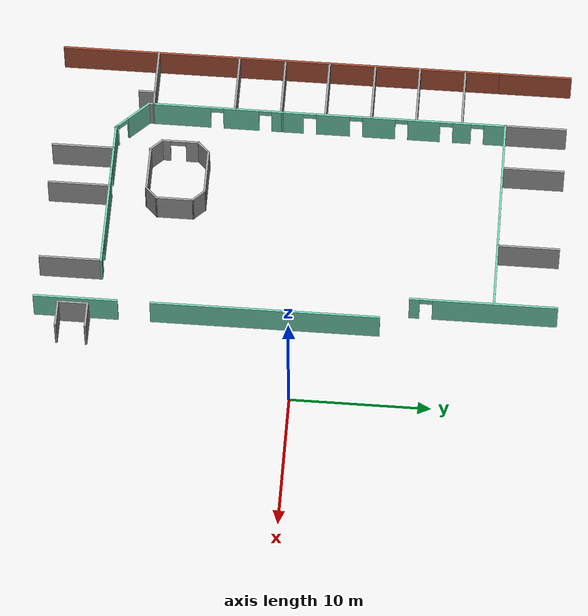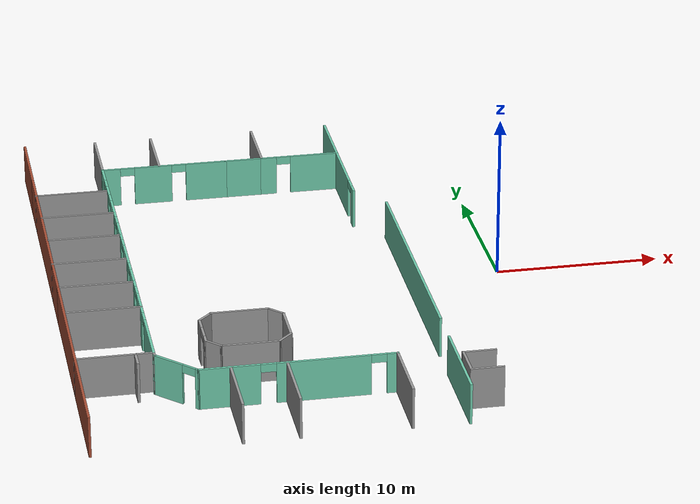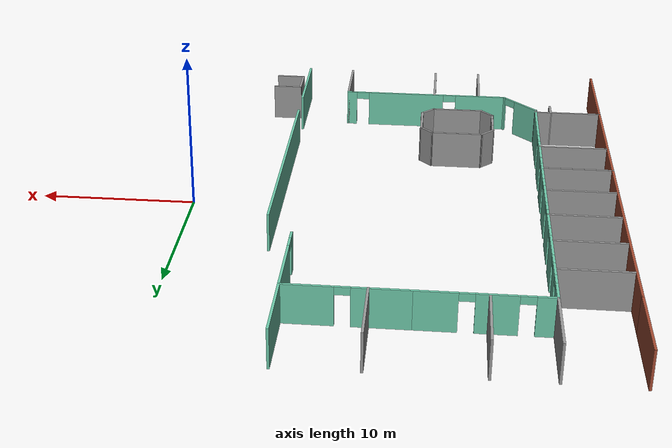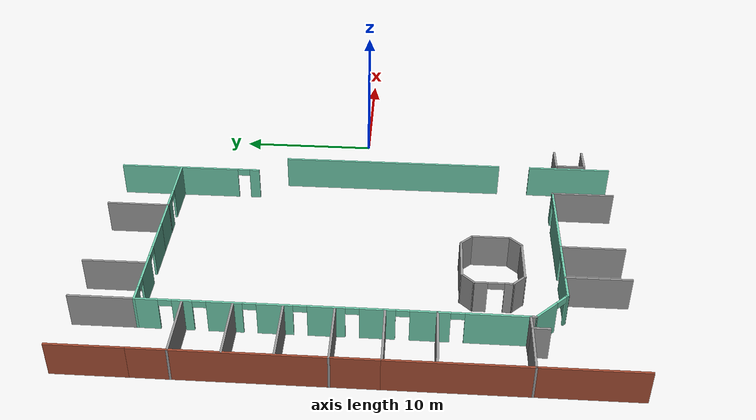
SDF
<sdf version="1.7">
 <model name="circuit_launch">
  <pose>0.02205 -0.005269 0 0 -0 0</pose>
  <link name="Wall_107">
   <pose>-18.6032 13.9124 0 0 -0 3.14159</pose>
   <visual name="Wall_107_Visual_0">
    <pose>-2.69056 0 1.25 0 -0 0</pose>
    <geometry><box><size>2.61888 0.15 2.5</size></box></geometry>
    <material>
     <script><uri>file://media/materials/scripts/gazebo.material</uri><name>Gazebo/Grey</name></script>
     <ambient>0.435294 0.796078 0.67451 1</ambient>
    </material>
    <meta><layer>0</layer></meta>
   </visual>
   <collision name="Wall_107_Collision_0">
    <geometry><box><size>2.61888 0.15 2.5</size></box></geometry>
    <pose>-2.69056 0 1.25 0 -0 0</pose>
   </collision>
   <visual name="Wall_107_Visual_1">
    <pose>0.710992 0 1.25 0 -0 0</pose>
    <geometry><box><size>2.38423 0.15 2.5</size></box></geometry>
    <material>
     <script><uri>file://media/materials/scripts/gazebo.material</uri><name>Gazebo/Grey</name></script>
     <ambient>0.435294 0.796078 0.67451 1</ambient>
    </material>
    <meta><layer>0</layer></meta>
   </visual>
   <collision name="Wall_107_Collision_1">
    <geometry><box><size>2.38423 0.15 2.5</size></box></geometry>
    <pose>0.710992 0 1.25 0 -0 0</pose>
   </collision>
   <visual name="Wall_107_Visual_2">
    <pose>3.40155 0 1.25 0 -0 0</pose>
    <geometry><box><size>1.19689 0.15 2.5</size></box></geometry>
    <material>
     <script><uri>file://media/materials/scripts/gazebo.material</uri><name>Gazebo/Grey</name></script>
     <ambient>0.435294 0.796078 0.67451 1</ambient>
    </material>
    <meta><layer>0</layer></meta>
   </visual>
   <collision name="Wall_107_Collision_2">
    <geometry><box><size>1.19689 0.15 2.5</size></box></geometry>
    <pose>3.40155 0 1.25 0 -0 0</pose>
   </collision>
   <visual name="Wall_107_Visual_3">
    <pose>-0.931122 0 2.25 0 -0 0</pose>
    <geometry><box><size>0.9 0.15 0.5</size></box></geometry>
    <material>
     <script><uri>file://media/materials/scripts/gazebo.material</uri><name>Gazebo/Grey</name></script>
     <ambient>0.435294 0.796078 0.67451 1</ambient>
    </material>
    <meta><layer>0</layer></meta>
   </visual>
   <collision name="Wall_107_Collision_3">
    <geometry><box><size>0.9 0.15 0.5</size></box></geometry>
    <pose>-0.931122 0 2.25 0 -0 0</pose>
   </collision>
   <visual name="Wall_107_Visual_4">
    <pose>2.35311 0 2.25 0 -0 0</pose>
    <geometry><box><size>0.9 0.15 0.5</size></box></geometry>
    <material>
     <script><uri>file://media/materials/scripts/gazebo.material</uri><name>Gazebo/Grey</name></script>
     <ambient>0.435294 0.796078 0.67451 1</ambient>
    </material>
    <meta><layer>0</layer></meta>
   </visual>
   <collision name="Wall_107_Collision_4">
    <geometry><box><size>0.9 0.15 0.5</size></box></geometry>
    <pose>2.35311 0 2.25 0 -0 0</pose>
   </collision>
  </link>
  <link name="Wall_111">
   <pose>-22.5282 5.86241 0 0 -0 -1.5708</pose>
   <visual name="Wall_111_Visual_0">
    <pose>-7.31172 0 1.25 0 -0 0</pose>
    <geometry><box><size>1.62655 0.15 2.5</size></box></geometry>
    <material>
     <script><uri>file://media/materials/scripts/gazebo.material</uri><name>Gazebo/Grey</name></script>
     <ambient>0.435294 0.796078 0.67451 1</ambient>
    </material>
    <meta><layer>0</layer></meta>
   </visual>
   <collision name="Wall_111_Collision_0">
    <geometry><box><size>1.62655 0.15 2.5</size></box></geometry>
    <pose>-7.31172 0 1.25 0 -0 0</pose>
   </collision>
   <visual name="Wall_111_Visual_1">
    <pose>-4.93124 0 1.25 0 -0 0</pose>
    <geometry><box><size>1.33442 0.15 2.5</size></box></geometry>
    <material>
     <script><uri>file://media/materials/scripts/gazebo.material</uri><name>Gazebo/Grey</name></script>
     <ambient>0.435294 0.796078 0.67451 1</ambient>
    </material>
    <meta><layer>0</layer></meta>
   </visual>
   <collision name="Wall_111_Collision_1">
    <geometry><box><size>1.33442 0.15 2.5</size></box></geometry>
    <pose>-4.93124 0 1.25 0 -0 0</pose>
   </collision>
   <visual name="Wall_111_Visual_2">
    <pose>-2.19142 0 1.25 0 -0 0</pose>
    <geometry><box><size>2.34522 0.15 2.5</size></box></geometry>
    <material>
     <script><uri>file://media/materials/scripts/gazebo.material</uri><name>Gazebo/Grey</name></script>
     <ambient>0.435294 0.796078 0.67451 1</ambient>
    </material>
    <meta><layer>0</layer></meta>
   </visual>
   <collision name="Wall_111_Collision_2">
    <geometry><box><size>2.34522 0.15 2.5</size></box></geometry>
    <pose>-2.19142 0 1.25 0 -0 0</pose>
   </collision>
   <visual name="Wall_111_Visual_3">
    <pose>1.0671 0 1.25 0 -0 0</pose>
    <geometry><box><size>2.37182 0.15 2.5</size></box></geometry>
    <material>
     <script><uri>file://media/materials/scripts/gazebo.material</uri><name>Gazebo/Grey</name></script>
     <ambient>0.435294 0.796078 0.67451 1</ambient>
    </material>
    <meta><layer>0</layer></meta>
   </visual>
   <collision name="Wall_111_Collision_3">
    <geometry><box><size>2.37182 0.15 2.5</size></box></geometry>
    <pose>1.0671 0 1.25 0 -0 0</pose>
   </collision>
   <visual name="Wall_111_Visual_4">
    <pose>4.37883 0 1.25 0 -0 0</pose>
    <geometry><box><size>2.45162 0.15 2.5</size></box></geometry>
    <material>
     <script><uri>file://media/materials/scripts/gazebo.material</uri><name>Gazebo/Grey</name></script>
     <ambient>0.435294 0.796078 0.67451 1</ambient>
    </material>
    <meta><layer>0</layer></meta>
   </visual>
   <collision name="Wall_111_Collision_4">
    <geometry><box><size>2.45162 0.15 2.5</size></box></geometry>
    <pose>4.37883 0 1.25 0 -0 0</pose>
   </collision>
   <visual name="Wall_111_Visual_5">
    <pose>7.31482 0 1.25 0 -0 0</pose>
    <geometry><box><size>1.62036 0.15 2.5</size></box></geometry>
    <material>
     <script><uri>file://media/materials/scripts/gazebo.material</uri><name>Gazebo/Grey</name></script>
     <ambient>0.435294 0.796078 0.67451 1</ambient>
    </material>
    <meta><layer>0</layer></meta>
   </visual>
   <collision name="Wall_111_Collision_5">
    <geometry><box><size>1.62036 0.15 2.5</size></box></geometry>
    <pose>7.31482 0 1.25 0 -0 0</pose>
   </collision>
   <visual name="Wall_111_Visual_6">
    <pose>-6.04845 0 2.25 0 -0 0</pose>
    <geometry><box><size>0.9 0.15 0.5</size></box></geometry>
    <material>
     <script><uri>file://media/materials/scripts/gazebo.material</uri><name>Gazebo/Grey</name></script>
     <ambient>0.435294 0.796078 0.67451 1</ambient>
    </material>
    <meta><layer>0</layer></meta>
   </visual>
   <collision name="Wall_111_Collision_6">
    <geometry><box><size>0.9 0.15 0.5</size></box></geometry>
    <pose>-6.04845 0 2.25 0 -0 0</pose>
   </collision>
   <visual name="Wall_111_Visual_7">
    <pose>-3.81403 0 2.25 0 -0 0</pose>
    <geometry><box><size>0.9 0.15 0.5</size></box></geometry>
    <material>
     <script><uri>file://media/materials/scripts/gazebo.material</uri><name>Gazebo/Grey</name></script>
     <ambient>0.435294 0.796078 0.67451 1</ambient>
    </material>
    <meta><layer>0</layer></meta>
   </visual>
   <collision name="Wall_111_Collision_7">
    <geometry><box><size>0.9 0.15 0.5</size></box></geometry>
    <pose>-3.81403 0 2.25 0 -0 0</pose>
   </collision>
   <visual name="Wall_111_Visual_8">
    <pose>-0.568808 0 2.25 0 -0 0</pose>
    <geometry><box><size>0.9 0.15 0.5</size></box></geometry>
    <material>
     <script><uri>file://media/materials/scripts/gazebo.material</uri><name>Gazebo/Grey</name></script>
     <ambient>0.435294 0.796078 0.67451 1</ambient>
    </material>
    <meta><layer>0</layer></meta>
   </visual>
   <collision name="Wall_111_Collision_8">
    <geometry><box><size>0.9 0.15 0.5</size></box></geometry>
    <pose>-0.568808 0 2.25 0 -0 0</pose>
   </collision>
   <visual name="Wall_111_Visual_9">
    <pose>2.70302 0 2.25 0 -0 0</pose>
    <geometry><box><size>0.9 0.15 0.5</size></box></geometry>
    <material>
     <script><uri>file://media/materials/scripts/gazebo.material</uri><name>Gazebo/Grey</name></script>
     <ambient>0.435294 0.796078 0.67451 1</ambient>
    </material>
    <meta><layer>0</layer></meta>
   </visual>
   <collision name="Wall_111_Collision_9">
    <geometry><box><size>0.9 0.15 0.5</size></box></geometry>
    <pose>2.70302 0 2.25 0 -0 0</pose>
   </collision>
   <visual name="Wall_111_Visual_10">
    <pose>6.05464 0 2.25 0 -0 0</pose>
    <geometry><box><size>0.9 0.15 0.5</size></box></geometry>
    <material>
     <script><uri>file://media/materials/scripts/gazebo.material</uri><name>Gazebo/Grey</name></script>
     <ambient>0.435294 0.796078 0.67451 1</ambient>
    </material>
    <meta><layer>0</layer></meta>
   </visual>
   <collision name="Wall_111_Collision_10">
    <geometry><box><size>0.9 0.15 0.5</size></box></geometry>
    <pose>6.05464 0 2.25 0 -0 0</pose>
   </collision>
  </link>
  <link name="Wall_113">
   <pose>-22.548 -6.83655 0 0 -0 -1.57507</pose>
   <visual name="Wall_113_Visual_0">
    <pose>-4.29939 0 1.25 0 -0 0</pose>
    <geometry><box><size>0.849233 0.15 2.5</size></box></geometry>
    <material>
     <script><uri>file://media/materials/scripts/gazebo.material</uri><name>Gazebo/Grey</name></script>
     <ambient>0.435294 0.796078 0.67451 1</ambient>
    </material>
    <meta><layer>0</layer></meta>
   </visual>
   <collision name="Wall_113_Collision_0">
    <geometry><box><size>0.849233 0.15 2.5</size></box></geometry>
    <pose>-4.29939 0 1.25 0 -0 0</pose>
   </collision>
   <visual name="Wall_113_Visual_1">
    <pose>-1.67683 0 1.25 0 -0 0</pose>
    <geometry><box><size>2.59588 0.15 2.5</size></box></geometry>
    <material>
     <script><uri>file://media/materials/scripts/gazebo.material</uri><name>Gazebo/Grey</name></script>
     <ambient>0.435294 0.796078 0.67451 1</ambient>
    </material>
    <meta><layer>0</layer></meta>
   </visual>
   <collision name="Wall_113_Collision_1">
    <geometry><box><size>2.59588 0.15 2.5</size></box></geometry>
    <pose>-1.67683 0 1.25 0 -0 0</pose>
   </collision>
   <visual name="Wall_113_Visual_2">
    <pose>2.62255 0 1.25 0 -0 0</pose>
    <geometry><box><size>4.2029 0.15 2.5</size></box></geometry>
    <material>
     <script><uri>file://media/materials/scripts/gazebo.material</uri><name>Gazebo/Grey</name></script>
     <ambient>0.435294 0.796078 0.67451 1</ambient>
    </material>
    <meta><layer>0</layer></meta>
   </visual>
   <collision name="Wall_113_Collision_2">
    <geometry><box><size>4.2029 0.15 2.5</size></box></geometry>
    <pose>2.62255 0 1.25 0 -0 0</pose>
   </collision>
   <visual name="Wall_113_Visual_3">
    <pose>-3.42477 0 2.25 0 -0 0</pose>
    <geometry><box><size>0.9 0.15 0.5</size></box></geometry>
    <material>
     <script><uri>file://media/materials/scripts/gazebo.material</uri><name>Gazebo/Grey</name></script>
     <ambient>0.435294 0.796078 0.67451 1</ambient>
    </material>
    <meta><layer>0</layer></meta>
   </visual>
   <collision name="Wall_113_Collision_3">
    <geometry><box><size>0.9 0.15 0.5</size></box></geometry>
    <pose>-3.42477 0 2.25 0 -0 0</pose>
   </collision>
   <visual name="Wall_113_Visual_4">
    <pose>0.071105 0 2.25 0 -0 0</pose>
    <geometry><box><size>0.9 0.15 0.5</size></box></geometry>
    <material>
     <script><uri>file://media/materials/scripts/gazebo.material</uri><name>Gazebo/Grey</name></script>
     <ambient>0.435294 0.796078 0.67451 1</ambient>
    </material>
    <meta><layer>0</layer></meta>
   </visual>
   <collision name="Wall_113_Collision_4">
    <geometry><box><size>0.9 0.15 0.5</size></box></geometry>
    <pose>0.071105 0 2.25 0 -0 0</pose>
   </collision>
  </link>
  <link name="Wall_115">
   <collision name="Wall_115_Collision">
    <geometry><box><size>3.5 0.15 2.5</size></box></geometry>
    <pose>0 0 1.25 0 -0 0</pose>
   </collision>
   <visual name="Wall_115_Visual">
    <pose>0 0 1.25 0 -0 0</pose>
    <geometry><box><size>3.5 0.15 2.5</size></box></geometry>
    <material>
     <script><uri>file://media/materials/scripts/gazebo.material</uri><name>Gazebo/Grey</name></script>
     <ambient>1 1 1 1</ambient>
    </material>
    <meta><layer>0</layer></meta>
   </visual>
   <pose>-17.0124 -7.21468 0 0 -0 0</pose>
  </link>
  <link name="Wall_116">
   <collision name="Wall_116_Collision">
    <geometry><box><size>1.25 0.15 2.5</size></box></geometry>
    <pose>0 0 1.25 0 -0 0</pose>
   </collision>
   <visual name="Wall_116_Visual">
    <pose>0 0 1.25 0 -0 0</pose>
    <geometry><box><size>1.25 0.15 2.5</size></box></geometry>
    <material>
     <script><uri>file://media/materials/scripts/gazebo.material</uri><name>Gazebo/Grey</name></script>
     <ambient>1 1 1 1</ambient>
    </material>
    <meta><layer>0</layer></meta>
   </visual>
   <pose>-14.9485 -7.60359 0 0 -0 -0.785398</pose>
  </link>
  <link name="Wall_117">
   <collision name="Wall_117_Collision">
    <geometry><box><size>2.75 0.15 2.5</size></box></geometry>
    <pose>0 0 1.25 0 -0 0</pose>
   </collision>
   <visual name="Wall_117_Visual">
    <pose>0 0 1.25 0 -0 0</pose>
    <geometry><box><size>2.75 0.15 2.5</size></box></geometry>
    <material>
     <script><uri>file://media/materials/scripts/gazebo.material</uri><name>Gazebo/Grey</name></script>
     <ambient>1 1 1 1</ambient>
    </material>
    <meta><layer>0</layer></meta>
   </visual>
   <pose>-14.5595 -9.2925 0 0 -0 -1.5708</pose>
  </link>
  <link name="Wall_118">
   <collision name="Wall_118_Collision">
    <geometry><box><size>1.25 0.15 2.5</size></box></geometry>
    <pose>0 0 1.25 0 -0 0</pose>
   </collision>
   <visual name="Wall_118_Visual">
    <pose>0 0 1.25 0 -0 0</pose>
    <geometry><box><size>1.25 0.15 2.5</size></box></geometry>
    <material>
     <script><uri>file://media/materials/scripts/gazebo.material</uri><name>Gazebo/Grey</name></script>
     <ambient>1 1 1 1</ambient>
    </material>
    <meta><layer>0</layer></meta>
   </visual>
   <pose>-14.9485 -10.9814 0 0 -0 -2.35619</pose>
  </link>
  <link name="Wall_119">
   <collision name="Wall_119_Collision">
    <geometry><box><size>3.5 0.15 2.5</size></box></geometry>
    <pose>0 0 1.25 0 -0 0</pose>
   </collision>
   <visual name="Wall_119_Visual">
    <pose>0 0 1.25 0 -0 0</pose>
    <geometry><box><size>3.5 0.15 2.5</size></box></geometry>
    <material>
     <script><uri>file://media/materials/scripts/gazebo.material</uri><name>Gazebo/Grey</name></script>
     <ambient>1 1 1 1</ambient>
    </material>
    <meta><layer>0</layer></meta>
   </visual>
   <pose>-17.0124 -11.3703 0 0 -0 3.14159</pose>
  </link>
  <link name="Wall_120">
   <collision name="Wall_120_Collision">
    <geometry><box><size>1.25 0.15 2.5</size></box></geometry>
    <pose>0 0 1.25 0 -0 0</pose>
   </collision>
   <visual name="Wall_120_Visual">
    <pose>0 0 1.25 0 -0 0</pose>
    <geometry><box><size>1.25 0.15 2.5</size></box></geometry>
    <material>
     <script><uri>file://media/materials/scripts/gazebo.material</uri><name>Gazebo/Grey</name></script>
     <ambient>1 1 1 1</ambient>
    </material>
    <meta><layer>0</layer></meta>
   </visual>
   <pose>-19.0763 -10.9814 0 0 -0 2.35619</pose>
  </link>
  <link name="Wall_121">
   <pose>-19.4652 -9.2925 0 0 -0 1.5708</pose>
   <visual name="Wall_121_Visual_0">
    <pose>-1.04498 0 1.25 0 -0 0</pose>
    <geometry><box><size>0.66004 0.15 2.5</size></box></geometry>
    <material>
     <script><uri>file://media/materials/scripts/gazebo.material</uri><name>Gazebo/Grey</name></script>
     <ambient>1 1 1 1</ambient>
    </material>
    <meta><layer>0</layer></meta>
   </visual>
   <collision name="Wall_121_Collision_0">
    <geometry><box><size>0.66004 0.15 2.5</size></box></geometry>
    <pose>-1.04498 0 1.25 0 -0 0</pose>
   </collision>
   <visual name="Wall_121_Visual_1">
    <pose>0.884108 0 1.25 0 -0 0</pose>
    <geometry><box><size>0.981785 0.15 2.5</size></box></geometry>
    <material>
     <script><uri>file://media/materials/scripts/gazebo.material</uri><name>Gazebo/Grey</name></script>
     <ambient>1 1 1 1</ambient>
    </material>
    <meta><layer>0</layer></meta>
   </visual>
   <collision name="Wall_121_Collision_1">
    <geometry><box><size>0.981785 0.15 2.5</size></box></geometry>
    <pose>0.884108 0 1.25 0 -0 0</pose>
   </collision>
   <visual name="Wall_121_Visual_2">
    <pose>-0.160872 0 2.25 0 -0 0</pose>
    <geometry><box><size>1.10817 0.15 0.5</size></box></geometry>
    <material>
     <script><uri>file://media/materials/scripts/gazebo.material</uri><name>Gazebo/Grey</name></script>
     <ambient>1 1 1 1</ambient>
    </material>
    <meta><layer>0</layer></meta>
   </visual>
   <collision name="Wall_121_Collision_2">
    <geometry><box><size>1.10817 0.15 0.5</size></box></geometry>
    <pose>-0.160872 0 2.25 0 -0 0</pose>
   </collision>
  </link>
  <link name="Wall_122">
   <collision name="Wall_122_Collision">
    <geometry><box><size>1.25 0.15 2.5</size></box></geometry>
    <pose>0 0 1.25 0 -0 0</pose>
   </collision>
   <visual name="Wall_122_Visual">
    <pose>0 0 1.25 0 -0 0</pose>
    <geometry><box><size>1.25 0.15 2.5</size></box></geometry>
    <material>
     <script><uri>file://media/materials/scripts/gazebo.material</uri><name>Gazebo/Grey</name></script>
     <ambient>1 1 1 1</ambient>
    </material>
    <meta><layer>0</layer></meta>
   </visual>
   <pose>-19.0763 -7.60359 0 0 -0 0.785398</pose>
  </link>
  <link name="Wall_124">
   <collision name="Wall_124_Collision">
    <geometry><box><size>16.25 0.15 2.5</size></box></geometry>
    <pose>0 0 1.25 0 -0 0</pose>
   </collision>
   <visual name="Wall_124_Visual">
    <pose>0 0 1.25 0 -0 0</pose>
    <geometry><box><size>16.25 0.15 2.5</size></box></geometry>
    <material>
     <script><uri>file://media/materials/scripts/gazebo.material</uri><name>Gazebo/Grey</name></script>
     <ambient>0.435294 0.796078 0.67451 1</ambient>
    </material>
    <meta><layer>0</layer></meta>
   </visual>
   <pose>-5.75967 -2.14165 0 0 -0 -1.5708</pose>
  </link>
  <link name="Wall_126">
   <collision name="Wall_126_Collision">
    <geometry><box><size>6 0.15 2.5</size></box></geometry>
    <pose>0 0 1.25 0 -0 0</pose>
   </collision>
   <visual name="Wall_126_Visual">
    <pose>0 0 1.25 0 -0 0</pose>
    <geometry><box><size>6 0.15 2.5</size></box></geometry>
    <material>
     <script><uri>file://media/materials/scripts/gazebo.material</uri><name>Gazebo/Grey</name></script>
     <ambient>0.435294 0.796078 0.67451 1</ambient>
    </material>
    <meta><layer>0</layer></meta>
   </visual>
   <pose>-5.76615 -15.5406 0 0 -0 -1.5708</pose>
  </link>
  <link name="Wall_140">
   <collision name="Wall_140_Collision">
    <geometry><box><size>2 0.15 2.5</size></box></geometry>
    <pose>0 0 1.25 0 -0 0</pose>
   </collision>
   <visual name="Wall_140_Visual">
    <pose>0 0 1.25 0 -0 0</pose>
    <geometry><box><size>2 0.15 2.5</size></box></geometry>
    <material>
     <script><uri>file://media/materials/scripts/gazebo.material</uri><name>Gazebo/Grey</name></script>
     <ambient>1 1 1 1</ambient>
    </material>
    <meta><layer>0</layer></meta>
   </visual>
   <pose>-4.45083 -14.6275 0 0 -0 3.14159</pose>
  </link>
  <link name="Wall_141">
   <collision name="Wall_141_Collision">
    <geometry><box><size>2.25 0.15 2.5</size></box></geometry>
    <pose>0 0 1.25 0 -0 0</pose>
   </collision>
   <visual name="Wall_141_Visual">
    <pose>0 0 1.25 0 -0 0</pose>
    <geometry><box><size>2.25 0.15 2.5</size></box></geometry>
    <material>
     <script><uri>file://media/materials/scripts/gazebo.material</uri><name>Gazebo/Grey</name></script>
     <ambient>1 1 1 1</ambient>
    </material>
    <meta><layer>0</layer></meta>
   </visual>
   <pose>-5.37583 -15.6775 0 0 -0 -1.5708</pose>
  </link>
  <link name="Wall_142">
   <collision name="Wall_142_Collision">
    <geometry><box><size>2 0.15 2.5</size></box></geometry>
    <pose>0 0 1.25 0 -0 0</pose>
   </collision>
   <visual name="Wall_142_Visual">
    <pose>0 0 1.25 0 -0 0</pose>
    <geometry><box><size>2 0.15 2.5</size></box></geometry>
    <material>
     <script><uri>file://media/materials/scripts/gazebo.material</uri><name>Gazebo/Grey</name></script>
     <ambient>1 1 1 1</ambient>
    </material>
    <meta><layer>0</layer></meta>
   </visual>
   <pose>-4.45083 -16.7275 0 0 -0 0</pose>
  </link>
  <link name="Wall_146">
   <pose>-14.7008 -14.0275 0 0 -0 0</pose>
   <visual name="Wall_146_Visual_0">
    <pose>-3.95927 0 1.25 0 -0 0</pose>
    <geometry><box><size>3.58146 0.15 2.5</size></box></geometry>
    <material>
     <script><uri>file://media/materials/scripts/gazebo.material</uri><name>Gazebo/Grey</name></script>
     <ambient>0.435294 0.796078 0.67451 1</ambient>
    </material>
    <meta><layer>0</layer></meta>
   </visual>
   <collision name="Wall_146_Collision_0">
    <geometry><box><size>3.58146 0.15 2.5</size></box></geometry>
    <pose>-3.95927 0 1.25 0 -0 0</pose>
   </collision>
   <visual name="Wall_146_Visual_1">
    <pose>1.43879 0 1.25 0 -0 0</pose>
    <geometry><box><size>5.41466 0.15 2.5</size></box></geometry>
    <material>
     <script><uri>file://media/materials/scripts/gazebo.material</uri><name>Gazebo/Grey</name></script>
     <ambient>0.435294 0.796078 0.67451 1</ambient>
    </material>
    <meta><layer>0</layer></meta>
   </visual>
   <collision name="Wall_146_Collision_1">
    <geometry><box><size>5.41466 0.15 2.5</size></box></geometry>
    <pose>1.43879 0 1.25 0 -0 0</pose>
   </collision>
   <visual name="Wall_146_Visual_2">
    <pose>5.39806 0 1.25 0 -0 0</pose>
    <geometry><box><size>0.703885 0.15 2.5</size></box></geometry>
    <material>
     <script><uri>file://media/materials/scripts/gazebo.material</uri><name>Gazebo/Grey</name></script>
     <ambient>0.435294 0.796078 0.67451 1</ambient>
    </material>
    <meta><layer>0</layer></meta>
   </visual>
   <collision name="Wall_146_Collision_2">
    <geometry><box><size>0.703885 0.15 2.5</size></box></geometry>
    <pose>5.39806 0 1.25 0 -0 0</pose>
   </collision>
   <visual name="Wall_146_Visual_3">
    <pose>-1.71854 0 2.25 0 -0 0</pose>
    <geometry><box><size>0.9 0.15 0.5</size></box></geometry>
    <material>
     <script><uri>file://media/materials/scripts/gazebo.material</uri><name>Gazebo/Grey</name></script>
     <ambient>0.435294 0.796078 0.67451 1</ambient>
    </material>
    <meta><layer>0</layer></meta>
   </visual>
   <collision name="Wall_146_Collision_3">
    <geometry><box><size>0.9 0.15 0.5</size></box></geometry>
    <pose>-1.71854 0 2.25 0 -0 0</pose>
   </collision>
   <visual name="Wall_146_Visual_4">
    <pose>4.59612 0 2.25 0 -0 0</pose>
    <geometry><box><size>0.9 0.15 0.5</size></box></geometry>
    <material>
     <script><uri>file://media/materials/scripts/gazebo.material</uri><name>Gazebo/Grey</name></script>
     <ambient>0.435294 0.796078 0.67451 1</ambient>
    </material>
    <meta><layer>0</layer></meta>
   </visual>
   <collision name="Wall_146_Collision_4">
    <geometry><box><size>0.9 0.15 0.5</size></box></geometry>
    <pose>4.59612 0 2.25 0 -0 0</pose>
   </collision>
  </link>
  <link name="Wall_149">
   <collision name="Wall_149_Collision">
    <geometry><box><size>4.5 0.15 2.5</size></box></geometry>
    <pose>0 0 1.25 0 -0 0</pose>
   </collision>
   <visual name="Wall_149_Visual">
    <pose>0 0 1.25 0 -0 0</pose>
    <geometry><box><size>4.5 0.15 2.5</size></box></geometry>
    <material>
     <script><uri>file://media/materials/scripts/gazebo.material</uri><name>Gazebo/Grey</name></script>
     <ambient>1 1 1 1</ambient>
    </material>
    <meta><layer>0</layer></meta>
   </visual>
   <pose>-15.3417 -16.2052 0 0 -0 -1.5708</pose>
  </link>
  <link name="Wall_151">
   <collision name="Wall_151_Collision">
    <geometry><box><size>4.5 0.15 2.5</size></box></geometry>
    <pose>0 0 1.25 0 -0 0</pose>
   </collision>
   <visual name="Wall_151_Visual">
    <pose>0 0 1.25 0 -0 0</pose>
    <geometry><box><size>4.5 0.15 2.5</size></box></geometry>
    <material>
     <script><uri>file://media/materials/scripts/gazebo.material</uri><name>Gazebo/Grey</name></script>
     <ambient>1 1 1 1</ambient>
    </material>
    <meta><layer>0</layer></meta>
   </visual>
   <pose>-18.5599 -16.2253 0 0 -0 -1.5708</pose>
  </link>
  <link name="Wall_167">
   <collision name="Wall_167_Collision">
    <geometry><box><size>4.5 0.15 2.5</size></box></geometry>
    <pose>0 0 1.25 0 -0 0</pose>
   </collision>
   <visual name="Wall_167_Visual">
    <pose>0 0 1.25 0 -0 0</pose>
    <geometry><box><size>4.5 0.15 2.5</size></box></geometry>
    <material>
     <script><uri>file://media/materials/scripts/gazebo.material</uri><name>Gazebo/Grey</name></script>
     <ambient>1 1 1 1</ambient>
    </material>
    <meta><layer>0</layer></meta>
   </visual>
   <pose>-18.9148 16.0952 0 0 -0 1.5708</pose>
  </link>
  <link name="Wall_169">
   <collision name="Wall_169_Collision">
    <geometry><box><size>4.5 0.15 2.5</size></box></geometry>
    <pose>0 0 1.25 0 -0 0</pose>
   </collision>
   <visual name="Wall_169_Visual">
    <pose>0 0 1.25 0 -0 0</pose>
    <geometry><box><size>4.5 0.15 2.5</size></box></geometry>
    <material>
     <script><uri>file://media/materials/scripts/gazebo.material</uri><name>Gazebo/Grey</name></script>
     <ambient>1 1 1 1</ambient>
    </material>
    <meta><layer>0</layer></meta>
   </visual>
   <pose>-22.5282 16.0874 0 0 -0 1.5708</pose>
  </link>
  <link name="Wall_171">
   <collision name="Wall_171_Collision">
    <geometry><box><size>4.5 0.15 2.5</size></box></geometry>
    <pose>0 0 1.25 0 -0 0</pose>
   </collision>
   <visual name="Wall_171_Visual">
    <pose>0 0 1.25 0 -0 0</pose>
    <geometry><box><size>4.5 0.15 2.5</size></box></geometry>
    <material>
     <script><uri>file://media/materials/scripts/gazebo.material</uri><name>Gazebo/Grey</name></script>
     <ambient>1 1 1 1</ambient>
    </material>
    <meta><layer>0</layer></meta>
   </visual>
   <pose>-24.8529 10.7814 0 0 -0 0</pose>
  </link>
  <link name="Wall_173">
   <collision name="Wall_173_Collision">
    <geometry><box><size>4.5 0.15 2.5</size></box></geometry>
    <pose>0 0 1.25 0 -0 0</pose>
   </collision>
   <visual name="Wall_173_Visual">
    <pose>0 0 1.25 0 -0 0</pose>
    <geometry><box><size>4.5 0.15 2.5</size></box></geometry>
    <material>
     <script><uri>file://media/materials/scripts/gazebo.material</uri><name>Gazebo/Grey</name></script>
     <ambient>1 1 1 1</ambient>
    </material>
    <meta><layer>0</layer></meta>
   </visual>
   <pose>-24.8263 7.48298 0 0 -0 0</pose>
  </link>
  <link name="Wall_175">
   <collision name="Wall_175_Collision">
    <geometry><box><size>4.5 0.15 2.5</size></box></geometry>
    <pose>0 0 1.25 0 -0 0</pose>
   </collision>
   <visual name="Wall_175_Visual">
    <pose>0 0 1.25 0 -0 0</pose>
    <geometry><box><size>4.5 0.15 2.5</size></box></geometry>
    <material>
     <script><uri>file://media/materials/scripts/gazebo.material</uri><name>Gazebo/Grey</name></script>
     <ambient>1 1 1 1</ambient>
    </material>
    <meta><layer>0</layer></meta>
   </visual>
   <pose>-24.7465 4.23776 0 0 -0 0</pose>
  </link>
  <link name="Wall_177">
   <collision name="Wall_177_Collision">
    <geometry><box><size>4.5 0.15 2.5</size></box></geometry>
    <pose>0 0 1.25 0 -0 0</pose>
   </collision>
   <visual name="Wall_177_Visual">
    <pose>0 0 1.25 0 -0 0</pose>
    <geometry><box><size>4.5 0.15 2.5</size></box></geometry>
    <material>
     <script><uri>file://media/materials/scripts/gazebo.material</uri><name>Gazebo/Grey</name></script>
     <ambient>1 1 1 1</ambient>
    </material>
    <meta><layer>0</layer></meta>
   </visual>
   <pose>-24.8529 0.912735 0 0 -0 0</pose>
  </link>
  <link name="Wall_179">
   <collision name="Wall_179_Collision">
    <geometry><box><size>4.5 0.15 2.5</size></box></geometry>
    <pose>0 0 1.25 0 -0 0</pose>
   </collision>
   <visual name="Wall_179_Visual">
    <pose>0 0 1.25 0 -0 0</pose>
    <geometry><box><size>4.5 0.15 2.5</size></box></geometry>
    <material>
     <script><uri>file://media/materials/scripts/gazebo.material</uri><name>Gazebo/Grey</name></script>
     <ambient>1 1 1 1</ambient>
    </material>
    <meta><layer>0</layer></meta>
   </visual>
   <pose>-24.8498 -2.2895 0 0 -0 0</pose>
  </link>
  <link name="Wall_181">
   <collision name="Wall_181_Collision">
    <geometry><box><size>4.5 0.15 2.5</size></box></geometry>
    <pose>0 0 1.25 0 -0 0</pose>
   </collision>
   <visual name="Wall_181_Visual">
    <pose>0 0 1.25 0 -0 0</pose>
    <geometry><box><size>4.5 0.15 2.5</size></box></geometry>
    <material>
     <script><uri>file://media/materials/scripts/gazebo.material</uri><name>Gazebo/Grey</name></script>
     <ambient>1 1 1 1</ambient>
    </material>
    <meta><layer>0</layer></meta>
   </visual>
   <pose>-24.7465 -5.63091 0 0 -0 0</pose>
  </link>
  <link name="Wall_188">
   <collision name="Wall_188_Collision">
    <geometry><box><size>2.5 0.15 2.5</size></box></geometry>
    <pose>0 0 1.25 0 -0 0</pose>
   </collision>
   <visual name="Wall_188_Visual">
    <pose>0 0 1.25 0 -0 0</pose>
    <geometry><box><size>2.5 0.15 2.5</size></box></geometry>
    <material>
     <script><uri>file://media/materials/scripts/gazebo.material</uri><name>Gazebo/Grey</name></script>
     <ambient>0.435294 0.796078 0.67451 1</ambient>
    </material>
    <meta><layer>0</layer></meta>
   </visual>
   <pose>-13.5032 13.9124 0 0 -0 0</pose>
  </link>
  <link name="Wall_189">
   <collision name="Wall_189_Collision">
    <geometry><box><size>4.5 0.15 2.5</size></box></geometry>
    <pose>0 0 1.25 0 -0 0</pose>
   </collision>
   <visual name="Wall_189_Visual">
    <pose>0 0 1.25 0 -0 0</pose>
    <geometry><box><size>4.5 0.15 2.5</size></box></geometry>
    <material>
     <script><uri>file://media/materials/scripts/gazebo.material</uri><name>Gazebo/Grey</name></script>
     <ambient>1 1 1 1</ambient>
    </material>
    <meta><layer>0</layer></meta>
   </visual>
   <pose>-12.3282 16.0874 0 0 -0 1.5708</pose>
  </link>
  <link name="Wall_204">
   <pose>-7.44304 13.1932 0 0 -0 -1.5708</pose>
   <visual name="Wall_204_Visual_0">
    <pose>-0.821435 0 1.25 0 -0 0</pose>
    <geometry><box><size>8.85713 0.15 2.5</size></box></geometry>
    <material>
     <script><uri>file://media/materials/scripts/gazebo.material</uri><name>Gazebo/Grey</name></script>
     <ambient>0.435294 0.796078 0.67451 1</ambient>
    </material>
    <meta><layer>0</layer></meta>
   </visual>
   <collision name="Wall_204_Collision_0">
    <geometry><box><size>8.85713 0.15 2.5</size></box></geometry>
    <pose>-0.821435 0 1.25 0 -0 0</pose>
   </collision>
   <visual name="Wall_204_Visual_1">
    <pose>4.87857 0 1.25 0 -0 0</pose>
    <geometry><box><size>0.74287 0.15 2.5</size></box></geometry>
    <material>
     <script><uri>file://media/materials/scripts/gazebo.material</uri><name>Gazebo/Grey</name></script>
     <ambient>0.435294 0.796078 0.67451 1</ambient>
    </material>
    <meta><layer>0</layer></meta>
   </visual>
   <collision name="Wall_204_Collision_1">
    <geometry><box><size>0.74287 0.15 2.5</size></box></geometry>
    <pose>4.87857 0 1.25 0 -0 0</pose>
   </collision>
   <visual name="Wall_204_Visual_2">
    <pose>4.05713 0 2.25 0 -0 0</pose>
    <geometry><box><size>0.9 0.15 0.5</size></box></geometry>
    <material>
     <script><uri>file://media/materials/scripts/gazebo.material</uri><name>Gazebo/Grey</name></script>
     <ambient>0.435294 0.796078 0.67451 1</ambient>
    </material>
    <meta><layer>0</layer></meta>
   </visual>
   <collision name="Wall_204_Collision_2">
    <geometry><box><size>0.9 0.15 0.5</size></box></geometry>
    <pose>4.05713 0 2.25 0 -0 0</pose>
   </collision>
  </link>
  <link name="Wall_206">
   <pose>-9.90315 13.9124 0 0 -0 0</pose>
   <visual name="Wall_206_Visual_0">
    <pose>-1.98589 0 1.25 0 -0 0</pose>
    <geometry><box><size>1.02823 0.15 2.5</size></box></geometry>
    <material>
     <script><uri>file://media/materials/scripts/gazebo.material</uri><name>Gazebo/Grey</name></script>
     <ambient>0.435294 0.796078 0.67451 1</ambient>
    </material>
    <meta><layer>0</layer></meta>
   </visual>
   <collision name="Wall_206_Collision_0">
    <geometry><box><size>1.02823 0.15 2.5</size></box></geometry>
    <pose>-1.98589 0 1.25 0 -0 0</pose>
   </collision>
   <visual name="Wall_206_Visual_1">
    <pose>0.964114 0 1.25 0 -0 0</pose>
    <geometry><box><size>3.07177 0.15 2.5</size></box></geometry>
    <material>
     <script><uri>file://media/materials/scripts/gazebo.material</uri><name>Gazebo/Grey</name></script>
     <ambient>0.435294 0.796078 0.67451 1</ambient>
    </material>
    <meta><layer>0</layer></meta>
   </visual>
   <collision name="Wall_206_Collision_1">
    <geometry><box><size>3.07177 0.15 2.5</size></box></geometry>
    <pose>0.964114 0 1.25 0 -0 0</pose>
   </collision>
   <visual name="Wall_206_Visual_2">
    <pose>-1.02177 0 2.25 0 -0 0</pose>
    <geometry><box><size>0.9 0.15 0.5</size></box></geometry>
    <material>
     <script><uri>file://media/materials/scripts/gazebo.material</uri><name>Gazebo/Grey</name></script>
     <ambient>0.435294 0.796078 0.67451 1</ambient>
    </material>
    <meta><layer>0</layer></meta>
   </visual>
   <collision name="Wall_206_Collision_2">
    <geometry><box><size>0.9 0.15 0.5</size></box></geometry>
    <pose>-1.02177 0 2.25 0 -0 0</pose>
   </collision>
  </link>
  <link name="Wall_212">
   <collision name="Wall_212_Collision">
    <geometry><box><size>4.5 0.15 2.5</size></box></geometry>
    <pose>0 0 1.25 0 -0 0</pose>
   </collision>
   <visual name="Wall_212_Visual">
    <pose>0 0 1.25 0 -0 0</pose>
    <geometry><box><size>4.5 0.15 2.5</size></box></geometry>
    <material>
     <script><uri>file://media/materials/scripts/gazebo.material</uri><name>Gazebo/Grey</name></script>
     <ambient>1 1 1 1</ambient>
    </material>
    <meta><layer>0</layer></meta>
   </visual>
   <pose>-9.02583 -16.2025 0 0 -0 -1.5708</pose>
  </link>
  <link name="Wall_54">
   <collision name="Wall_54_Collision">
    <geometry><box><size>16.25 0.15 2.5</size></box></geometry>
    <pose>0 0 1.25 0 -0 0</pose>
   </collision>
   <visual name="Wall_54_Visual">
    <pose>0 0 1.25 0 -0 0</pose>
    <geometry><box><size>16.25 0.15 2.5</size></box></geometry>
    <material>
     <script><uri>file://media/materials/scripts/gazebo.material</uri><name>Gazebo/Bricks</name></script>
     <ambient>1 1 1 1</ambient>
    </material>
    <meta><layer>0</layer></meta>
   </visual>
   <pose>-27.0248 -10.3395 0 0 -0 1.5708</pose>
  </link>
  <link name="Wall_56">
   <collision name="Wall_56_Collision">
    <geometry><box><size>15.75 0.15 2.5</size></box></geometry>
    <pose>0 0 1.25 0 -0 0</pose>
   </collision>
   <visual name="Wall_56_Visual">
    <pose>0 0 1.25 0 -0 0</pose>
    <geometry><box><size>15.75 0.15 2.5</size></box></geometry>
    <material>
     <script><uri>file://media/materials/scripts/gazebo.material</uri><name>Gazebo/Bricks</name></script>
     <ambient>1 1 1 1</ambient>
    </material>
    <meta><layer>0</layer></meta>
   </visual>
   <pose>-27.0248 5.5105 0 0 -0 1.5708</pose>
  </link>
  <link name="Wall_58">
   <collision name="Wall_58_Collision">
    <geometry><box><size>5.25 0.15 2.5</size></box></geometry>
    <pose>0 0 1.25 0 -0 0</pose>
   </collision>
   <visual name="Wall_58_Visual">
    <pose>0 0 1.25 0 -0 0</pose>
    <geometry><box><size>5.25 0.15 2.5</size></box></geometry>
    <material>
     <script><uri>file://media/materials/scripts/gazebo.material</uri><name>Gazebo/Bricks</name></script>
     <ambient>1 1 1 1</ambient>
    </material>
    <meta><layer>0</layer></meta>
   </visual>
   <pose>-27.0248 15.8605 0 0 -0 1.5708</pose>
  </link>
  <link name="Wall_68">
   <collision name="Wall_68_Collision">
    <geometry><box><size>3.57611 0.15 2.5</size></box></geometry>
    <pose>0 0 1.25 0 -0 0</pose>
   </collision>
   <visual name="Wall_68_Visual">
    <pose>0 0 1.25 0 -0 0</pose>
    <geometry><box><size>3.57611 0.15 2.5</size></box></geometry>
    <material>
     <script><uri>file://media/materials/scripts/gazebo.material</uri><name>Gazebo/Grey</name></script>
     <ambient>1 1 1 1</ambient>
    </material>
    <meta><layer>0</layer></meta>
   </visual>
   <pose>-25.321 -11.5161 0 0 -0 0</pose>
  </link>
  <link name="Wall_69">
   <collision name="Wall_69_Collision">
    <geometry><box><size>1.25 0.15 2.5</size></box></geometry>
    <pose>0 0 1.25 0 -0 0</pose>
   </collision>
   <visual name="Wall_69_Visual">
    <pose>0 0 1.25 0 -0 0</pose>
    <geometry><box><size>1.25 0.15 2.5</size></box></geometry>
    <material>
     <script><uri>file://media/materials/scripts/gazebo.material</uri><name>Gazebo/Grey</name></script>
     <ambient>1 1 1 1</ambient>
    </material>
    <meta><layer>0</layer></meta>
   </visual>
   <pose>-23.6079 -12.0661 0 0 -0 -1.5708</pose>
  </link>
  <link name="Wall_71">
   <collision name="Wall_71_Collision">
    <geometry><box><size>1.19052 0.15 2.5</size></box></geometry>
    <pose>0 0 1.25 0 -0 0</pose>
   </collision>
   <visual name="Wall_71_Visual">
    <pose>0 0 1.25 0 -0 0</pose>
    <geometry><box><size>1.19052 0.15 2.5</size></box></geometry>
    <material>
     <script><uri>file://media/materials/scripts/gazebo.material</uri><name>Gazebo/Grey</name></script>
     <ambient>1 1 1 1</ambient>
    </material>
    <meta><layer>0</layer></meta>
   </visual>
   <pose>-23.0879 -11.5008 0 0 -0 0.029403</pose>
  </link>
  <link name="Wall_73">
   <collision name="Wall_73_Collision">
    <geometry><box><size>0.5 0.15 2.5</size></box></geometry>
    <pose>0 0 1.25 0 -0 0</pose>
   </collision>
   <visual name="Wall_73_Visual">
    <pose>0 0 1.25 0 -0 0</pose>
    <geometry><box><size>0.5 0.15 2.5</size></box></geometry>
    <material>
     <script><uri>file://media/materials/scripts/gazebo.material</uri><name>Gazebo/Grey</name></script>
     <ambient>1 1 1 1</ambient>
    </material>
    <meta><layer>0</layer></meta>
   </visual>
   <pose>-22.5679 -11.6605 0 0 -0 -1.5708</pose>
  </link>
  <link name="Wall_74">
   <pose>-21.4718 -12.9315 0 0 -0 -0.785398</pose>
   <visual name="Wall_74_Visual_0">
    <pose>-0.586655 0 1.25 0 -0 0</pose>
    <geometry><box><size>2.07669 0.15 2.5</size></box></geometry>
    <material>
     <script><uri>file://media/materials/scripts/gazebo.material</uri><name>Gazebo/Grey</name></script>
     <ambient>0.435294 0.796078 0.67451 1</ambient>
    </material>
    <meta><layer>0</layer></meta>
   </visual>
   <collision name="Wall_74_Collision_0">
    <geometry><box><size>2.07669 0.15 2.5</size></box></geometry>
    <pose>-0.586655 0 1.25 0 -0 0</pose>
   </collision>
   <visual name="Wall_74_Visual_1">
    <pose>1.48835 0 1.25 0 -0 0</pose>
    <geometry><box><size>0.273311 0.15 2.5</size></box></geometry>
    <material>
     <script><uri>file://media/materials/scripts/gazebo.material</uri><name>Gazebo/Grey</name></script>
     <ambient>0.435294 0.796078 0.67451 1</ambient>
    </material>
    <meta><layer>0</layer></meta>
   </visual>
   <collision name="Wall_74_Collision_1">
    <geometry><box><size>0.273311 0.15 2.5</size></box></geometry>
    <pose>1.48835 0 1.25 0 -0 0</pose>
   </collision>
   <visual name="Wall_74_Visual_2">
    <pose>0.901689 0 2.25 0 -0 0</pose>
    <geometry><box><size>0.9 0.15 0.5</size></box></geometry>
    <material>
     <script><uri>file://media/materials/scripts/gazebo.material</uri><name>Gazebo/Grey</name></script>
     <ambient>0.435294 0.796078 0.67451 1</ambient>
    </material>
    <meta><layer>0</layer></meta>
   </visual>
   <collision name="Wall_74_Collision_2">
    <geometry><box><size>0.9 0.15 0.5</size></box></geometry>
    <pose>0.901689 0 2.25 0 -0 0</pose>
   </collision>
  </link>
  <static>1</static>
 </model>
</sdf>
